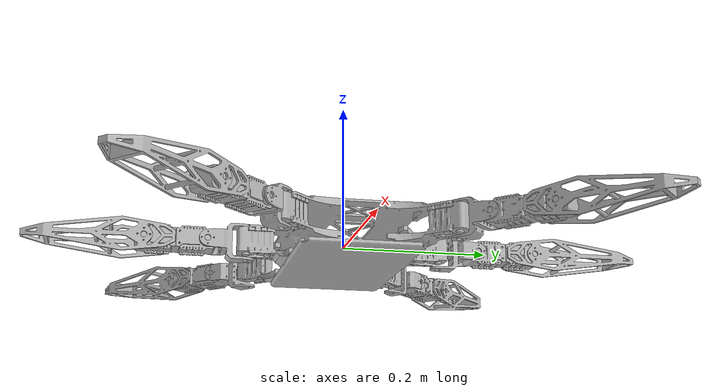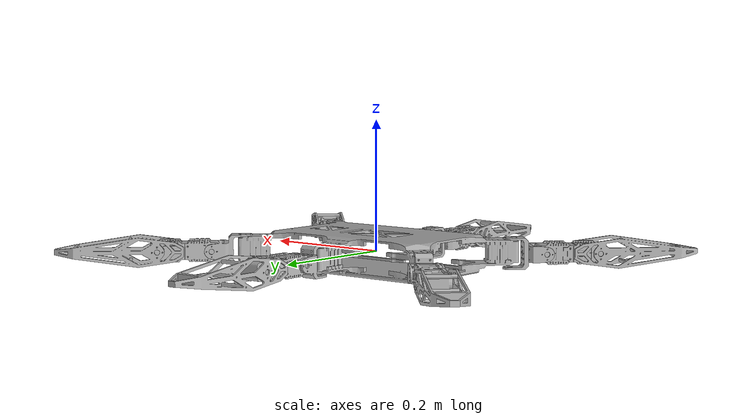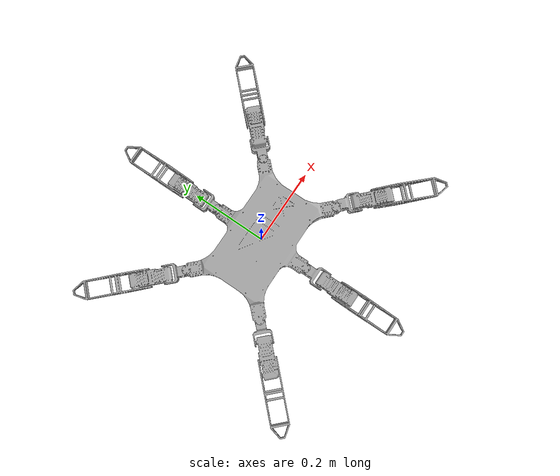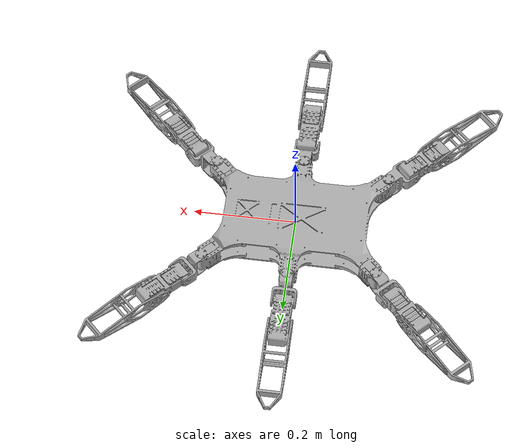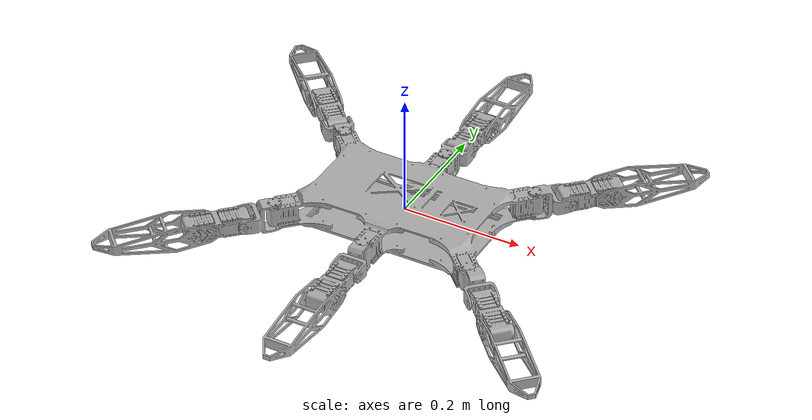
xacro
<?xml version="1.0" encoding="UTF-8" ?>

<robot xmlns:xacro="http://ros.org/wiki/xacro" name="spider">

    <!-- parameters -->
    <xacro:property name="pi" value="3.1415926535897931"/>
    <xacro:property name="body_length_x" value="0.3556"/>
    <xacro:property name="body_length_y" value="0.165"/>
    <xacro:property name="coxa_length" value="0.052"/>
    <xacro:property name="femur_length" value="0.082"/>
    <xacro:property name="tibia_length" value="0.155"/>
    <xacro:property name="tarsus_length" value="0.0"/>

    <gazebo>
           <plugin name="gazebo_ros_control" filename="libgazebo_ros_control.so">
               <robotNamespace>/spider</robotNamespace>
           </plugin>
    </gazebo>

    <link name="base_link"/>

    <joint name="base_joint" type="fixed">
        <parent link="base_link"/>
        <child link="body_link"/>
        <origin xyz="0.0 0.0 0.0" rpy="0.0 0.0 0.0"/>
    </joint>

    <link name="body_link">
        <visual>
            <origin xyz="0.0 0.0 0.0" rpy="0.0 0.0 0.0"/>
            <geometry>
                <mesh filename="package://spider_description/meshes/xacro/base_link.STL" />
            </geometry>
            <material name="">
                <color rgba="0.7 0.7 0.7 1"/>
            </material>
        </visual>
        <collision>
            <origin xyz="0.0 0.0 0.0" rpy="0.0 0.0 0.0"/>
            <geometry>
                <mesh filename="package://spider_description/meshes/xacro/base_link.STL" />
            </geometry>
            <material name="">
                <color rgba="0.7 0.7 0.7 1"/>
            </material>
        </collision>
        <inertial>
        <origin
                xyz="-0.000530634264644336 -0.000146735871100936 0.002797336519253"
                rpy="0 0 0" />
              <mass
                value="0.611606451626775" />
              <inertia
                ixx="0.00454780272495035"
                ixy="-5.85469596986661E-07"
                ixz="5.809136780602E-06"
                iyy="0.00784053245943273"
                iyz="1.609753583614E-06"
                izz="0.0121391274208026" />
        </inertial>
    </link>

    <!-- Joint properties -->
   <xacro:property name="joint_lower_limit" value="-2.00"/>
   <xacro:property name="joint_upper_limit" value="2.00"/>
   <xacro:property name="joint_effort" value="0.8"/>
   <xacro:property name="joint_velocity" value="0.524"/>

    <!-- Leg macro -->
    <xacro:macro name="leg" params="side position x y angle axis_coxa axis_femur axis_tibia mass">

        <!-- leg position -->
        <joint name="leg_center_joint_${side}${position}" type="fixed">
            <origin xyz="${x} ${y} 0.0" rpy="0.0 0.0 0.0"/>
            <parent link="body_link"/>
            <child link="leg_center_${side}${position}"/>
        </joint>
        <link name="leg_center_${side}${position}">
            <inertial>
                <origin xyz="0.0 0.0 0.0" rpy="0.0 0.0 0.0" />
                <mass value="0.00001"/>
                <inertia
                    ixx="1.0" ixy="0.0"  ixz="0.0"
                    iyy="1.0" iyz="0.0"
                    izz="1.0" />
            </inertial>
        </link>

<!-- coxa -->
       <joint name="j_c1_${side}${position}" type="revolute">
           <origin xyz="0.0 0.0 0.0" rpy="0.0 0.0 ${angle}"/>
           <parent link="leg_center_${side}${position}"/>
           <child link="link_c1_${side}${position}"/>
           <axis xyz="0.0 0.0 ${axis_coxa}"/>
           <limit lower="${joint_lower_limit}" upper="${joint_upper_limit}" effort="${joint_effort}" velocity="${joint_velocity}"/>
       </joint>
       <transmission name="coxa_transmission_${side}${position}">
           <type>transmission_interface/SimpleTransmission</type>
           <joint name="j_c1_${side}${position}">
               <hardwareInterface>EffortJointInterface</hardwareInterface>
           </joint>
           <actuator name="coxa_motor_${side}${position}">
               <hardwareInterface>EffortJointInterface</hardwareInterface>
               <mechanicalReduction>1</mechanicalReduction>
           </actuator>
       </transmission>
       <link name="link_c1_${side}${position}">
           <visual>
               <origin xyz="0.0 0.0 0.0" rpy="0.0 0.0 0.0"/>
               <geometry>
                   <mesh filename="package://spider_description/meshes/xacro/coxa_link.STL"/>
               </geometry>
               <material name="">
                   <color rgba="0.7 0.7 0.7 1"/>
               </material>
           </visual>
           <collision>
               <origin xyz="0.0 0.0 0.0" rpy="0.0 0.0 0.0" />
               <geometry>
                   <mesh filename="package://spider_description/meshes/xacro/coxa_link.STL"/>
               </geometry>
               <material name="">
                   <color rgba="0.7 0.7 0.7 1" />
               </material>
           </collision>
           <inertial>
           <origin
                   xyz="0.0259999991636717 5.48568285269058E-07 -5.52350892489561E-07"
                   rpy="0 0 0" />
                 <mass
                   value="${mass}" />
                 <inertia
                   ixx="7.12966880670217E-06"
                   ixy="-4.04797875390301E-11"
                   ixz="-4.20782143594676E-11"
                   iyy="7.05736504437165E-06"
                   iyz="-7.44539286286323E-15"
                   izz="7.05736451070854E-06" />
           </inertial>
       </link>

<!-- femur -->
        <joint name="j_thigh_${side}${position}" type="revolute">
            <origin xyz="${coxa_length} 0.0 0.0" rpy="-${pi/2} 0 0.0"/>
            <parent link="link_c1_${side}${position}"/>
            <child link="link_thigh_${side}${position}"/>
            <axis xyz="0.0 0.0 ${axis_femur}"/>
            <limit lower="${joint_lower_limit}" upper="${joint_upper_limit}" effort="${joint_effort}" velocity="${joint_velocity}"/>
        </joint>
        <transmission name="femur_transmission_${side}${position}">
            <type>transmission_interface/SimpleTransmission</type>
            <joint name="j_thigh_${side}${position}">
                <hardwareInterface>EffortJointInterface</hardwareInterface>
            </joint>
            <actuator name="femur_motor_${side}${position}">
                <hardwareInterface>EffortJointInterface</hardwareInterface>
                <mechanicalReduction>1</mechanicalReduction>
            </actuator>
        </transmission>
        <link name="link_thigh_${side}${position}">
            <visual>
                <origin xyz="0.0 0.0 0.0" rpy="0.0 0.0 0.0"/>
                <geometry>
                    <mesh filename="package://spider_description/meshes/xacro/femur_link.STL"/>
                </geometry>
                <material name="">
                    <color rgba="0.7 0.7 0.7 1"/>
                </material>
            </visual>
            <collision>
                <origin xyz="0.0 0.0 0.0" rpy="0.0 0.0 0.0" />
                <geometry>
                    <mesh filename="package://spider_description/meshes/xacro/femur_link.STL"/>
                </geometry>
                <material name="">
                    <color rgba="0.7 0.7 0.7 1" />
                </material>
            </collision>
            <inertial>
            <origin
                    xyz="0.040999769634667 -4.30568319366442E-08 0.000754475780533559"
                    rpy="0 0 0" />
                  <mass
                    value="0.0953381260317791" />
                  <inertia
                    ixx="1.58226170549124E-05"
                    ixy="7.18370173005665E-09"
                    ixz="2.44292687080875E-07"
                    iyy="9.74932250427542E-05"
                    iyz="-1.77284495331422E-11"
                    izz="9.24662892423645E-05" />
            </inertial>
        </link>

<!-- tibia -->
      <joint name="j_tibia_${side}${position}" type="revolute">
          <origin xyz="${femur_length} 0.0  0.0" rpy="${pi} 0.0 0.0"/>
          <parent link="link_thigh_${side}${position}"/>
          <child link="link_tibia_${side}${position}"/>
          <axis xyz="0.0 0.0 ${axis_tibia}"/>
          <limit lower="${joint_lower_limit}" upper="${joint_upper_limit}" effort="${joint_effort}" velocity="${joint_velocity}"/>
      </joint>
      <transmission name="tibia_transmission_${side}${position}">
          <type>transmission_interface/SimpleTransmission</type>
          <joint name="j_tibia_${side}${position}">
              <hardwareInterface>EffortJointInterface</hardwareInterface>
          </joint>
          <actuator name="tibia_motor_${side}${position}">
              <hardwareInterface>EffortJointInterface</hardwareInterface>
              <mechanicalReduction>1</mechanicalReduction>
          </actuator>
      </transmission>
      <link name="link_tibia_${side}${position}">
          <visual>
              <origin xyz="0.0 0.0 0.0" rpy="0.0 0.0 0.0"/>
              <geometry>
                  <mesh filename="package://spider_description/meshes/xacro/tibia_link.STL"/>
              </geometry>
              <material name="">
                  <color rgba="0.7 0.7 0.7 1"/>
              </material>
          </visual>
          <collision>
              <origin xyz="0.0 0.0 0.0" rpy="0.0 0.0 0.0" />
              <geometry>
                  <mesh filename="package://spider_description/meshes/xacro/tibia_link.STL"/>
              </geometry>
              <material name="">
                  <color rgba="0.7 0.7 0.7 1" />
              </material>
          </collision>
          <inertial>
          <origin
                  xyz="0.0582130928710533 -4.8413205307532E-07 -0.000309754397326167"
                  rpy="0 0 0" />
                <mass
                  value="0.0274685501932791" />
                <inertia
                  ixx="1.3790756851875E-05"
                  ixy="1.86386884764665E-09"
                  ixz="-2.70792447948708E-09"
                  iyy="8.67578889959408E-05"
                  iyz="1.52160816187718E-13"
                  izz="7.87024641434495E-05" />
          </inertial>
      </link>

<!-- foot -->
        <joint name="foot_joint_${side}${position}" type="fixed">
            <origin xyz="${tibia_length} 0.0 0.0" rpy="0.0 0.0 0.0" />
            <parent link="link_tibia_${side}${position}" />
            <child link="foot_${side}${position}" />
        </joint>
        <link name="foot_${side}${position}">
            <inertial>
                <origin xyz="0.0 0.0 0.0" rpy="0.0 0.0 0.0" />
                <mass value="0.00000001"/>
                <inertia
                    ixx="0.01E-020" ixy="0.0"  ixz="0.0"
                    iyy="0.01E-020" iyz="0.0"
                    izz="0.01E-020" />
            </inertial>
        </link>

    <gazebo reference="foot_${side}${position}">
      <mu1>100.0</mu1>
      <mu2>100.0</mu2>
    </gazebo>

    </xacro:macro>

    <gazebo>
        <plugin name="gazebo_ros_control" filename="libgazebo_ros_imu.so">
          <topicName>/spider/gyroscope_data</topicName>
          <serviceName>imu/service</serviceName>
          <bodyName>body_link</bodyName>
          <gaussianNoise>0</gaussianNoise>
          <rpyOffsets>0 0 0</rpyOffsets>
          <updateRate>30.0</updateRate>
          <alwaysOn>true</alwaysOn>
          <gaussianNoise>0</gaussianNoise>
        </plugin>
      </gazebo>

<gazebo>
    <plugin name="gazebo_ros_control" filename=" libgazebo_ros_p3d">
      <topicName>/spider/odom_gazebo</topicName>

    </plugin>
  </gazebo>

<!-- Build robot model -->

<xacro:leg side="r" position="r" x="-0.170" y="-0.110" angle="-${pi*3/4}" axis_femur="-1" axis_tibia="1" axis_coxa="1" mass="0.0207333939617734"/>
<xacro:leg side="r" position="m" x="0.0" y="-0.1325" angle="-${pi/2}" axis_femur="-1" axis_tibia="1" axis_coxa="1" mass="0.0207333939617734"/>
<xacro:leg side="r" position="f" x="0.1778" y="-0.110" angle="-${pi/4}" axis_femur="-1" axis_tibia="1" axis_coxa="1" mass="0.04073339396177341"/>

<xacro:leg side="l" position="r" x="-0.170" y="0.110" angle="${pi*3/4}" axis_femur="1" axis_tibia="-1" axis_coxa="1" mass="0.0207333939617734"/>
<xacro:leg side="l" position="m" x="0.0" y="0.1325" angle="${pi/2}" axis_femur="1" axis_tibia="-1" axis_coxa="1" mass="0.0207333939617734"/>
<xacro:leg side="l" position="f" x="0.170" y="0.110" angle="${pi/4}" axis_femur="1" axis_tibia="-1" axis_coxa="1" mass="0.04073339396177341"/>

</robot>
